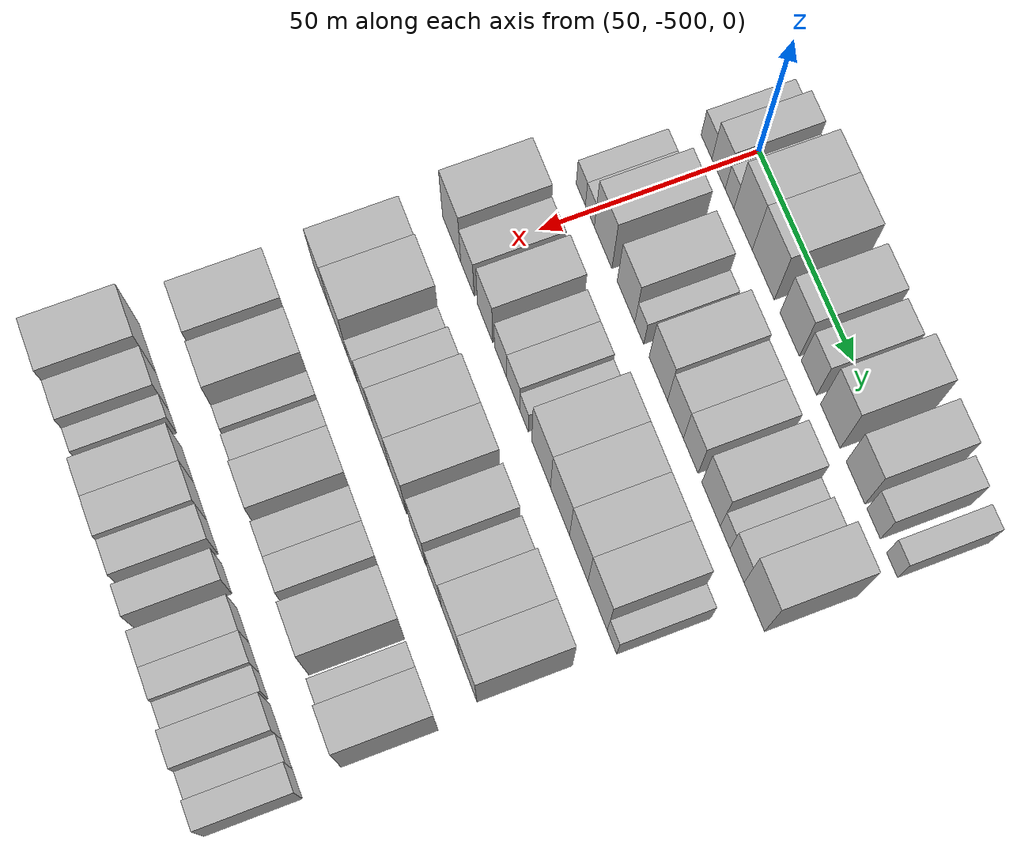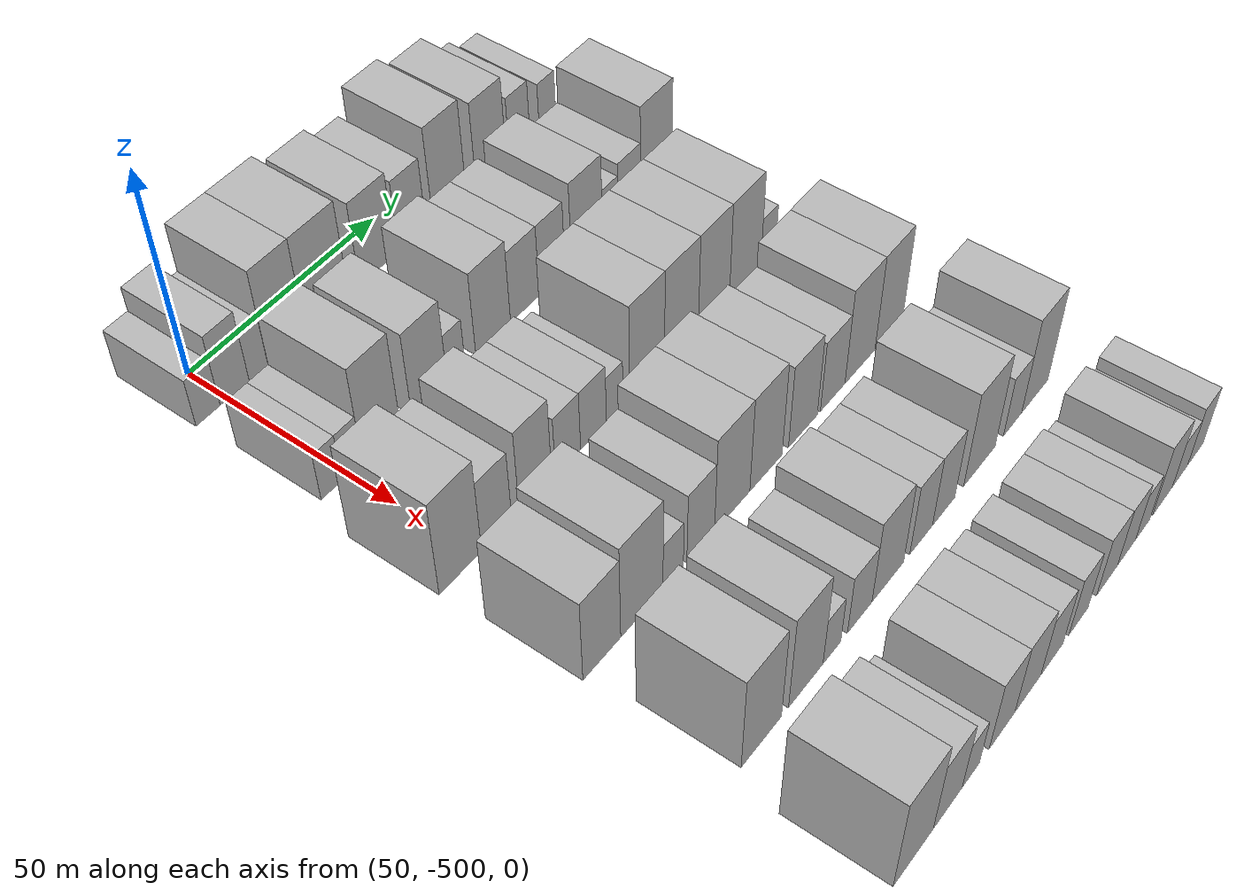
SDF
<sdf version="1.6">
 <world name="default">
  <model name="building_1">
   <static>1</static>
   <pose>50.0000 -505.0160 0 0.000000 0.000000 0.000000</pose>
   <link name="link">
    <pose>0 0 6.00 0 0 0</pose>
    <collision name="collision"><geometry><box><size>20.0000 5.9680 12.0000</size></box></geometry></collision>
    <visual name="visual">
     <cast_shadows>0</cast_shadows>
     <geometry><box><size>20.0000 5.9680 12.0000</size></box></geometry>
     <material>
      <script>
       <uri>model://HANNAS_wall/materials/scripts</uri>
       <uri>model://HANNAS_wall/materials/textures</uri>
       <name>vrc/HANNAS_wall</name>
      </script>
     </material>
    </visual>
   </link>
  </model>
  <model name="building_2">
   <static>1</static>
   <pose>50.0000 -498.3636 0 0.000000 0.000000 0.000000</pose>
   <link name="link">
    <pose>0 0 9.00 0 0 0</pose>
    <collision name="collision"><geometry><box><size>20.0000 7.3369 18.0000</size></box></geometry></collision>
    <visual name="visual">
     <cast_shadows>0</cast_shadows>
     <geometry><box><size>20.0000 7.3369 18.0000</size></box></geometry>
     <material>
      <script>
       <uri>model://HANNAS_wall/materials/scripts</uri>
       <uri>model://HANNAS_wall/materials/textures</uri>
       <name>vrc/HANNAS_wall</name>
      </script>
     </material>
    </visual>
   </link>
  </model>
  <model name="building_3">
   <static>1</static>
   <pose>50.0000 -492.2943 0 0.000000 0.000000 0.000000</pose>
   <link name="link">
    <pose>0 0 6.00 0 0 0</pose>
    <collision name="collision"><geometry><box><size>20.0000 4.8018 12.0000</size></box></geometry></collision>
    <visual name="visual">
     <cast_shadows>0</cast_shadows>
     <geometry><box><size>20.0000 4.8018 12.0000</size></box></geometry>
     <material>
      <script>
       <uri>model://HANNAS_wall/materials/scripts</uri>
       <uri>model://HANNAS_wall/materials/textures</uri>
       <name>vrc/HANNAS_wall</name>
      </script>
     </material>
    </visual>
   </link>
  </model>
  <model name="building_4">
   <static>1</static>
   <pose>50.0000 -484.9123 0 0.000000 0.000000 0.000000</pose>
   <link name="link">
    <pose>0 0 12.00 0 0 0</pose>
    <collision name="collision"><geometry><box><size>20.0000 9.9623 24.0000</size></box></geometry></collision>
    <visual name="visual">
     <cast_shadows>0</cast_shadows>
     <geometry><box><size>20.0000 9.9623 24.0000</size></box></geometry>
     <material>
      <script>
       <uri>model://HANNAS_wall/materials/scripts</uri>
       <uri>model://HANNAS_wall/materials/textures</uri>
       <name>vrc/HANNAS_wall</name>
      </script>
     </material>
    </visual>
   </link>
  </model>
  <model name="building_5">
   <static>1</static>
   <pose>50.0000 -474.0198 0 0.000000 0.000000 0.000000</pose>
   <link name="link">
    <pose>0 0 12.00 0 0 0</pose>
    <collision name="collision"><geometry><box><size>20.0000 11.8226 24.0000</size></box></geometry></collision>
    <visual name="visual">
     <cast_shadows>0</cast_shadows>
     <geometry><box><size>20.0000 11.8226 24.0000</size></box></geometry>
     <material>
      <script>
       <uri>model://HANNAS_wall/materials/scripts</uri>
       <uri>model://HANNAS_wall/materials/textures</uri>
       <name>vrc/HANNAS_wall</name>
      </script>
     </material>
    </visual>
   </link>
  </model>
  <model name="building_6">
   <static>1</static>
   <pose>50.0000 -460.0245 0 0.000000 0.000000 0.000000</pose>
   <link name="link">
    <pose>0 0 10.50 0 0 0</pose>
    <collision name="collision"><geometry><box><size>20.0000 10.1681 21.0000</size></box></geometry></collision>
    <visual name="visual">
     <cast_shadows>0</cast_shadows>
     <geometry><box><size>20.0000 10.1681 21.0000</size></box></geometry>
     <material>
      <script>
       <uri>model://HANNAS_wall/materials/scripts</uri>
       <uri>model://HANNAS_wall/materials/textures</uri>
       <name>vrc/HANNAS_wall</name>
      </script>
     </material>
    </visual>
   </link>
  </model>
  <model name="building_7">
   <static>1</static>
   <pose>50.0000 -449.9485 0 0.000000 0.000000 0.000000</pose>
   <link name="link">
    <pose>0 0 9.00 0 0 0</pose>
    <collision name="collision"><geometry><box><size>20.0000 7.9838 18.0000</size></box></geometry></collision>
    <visual name="visual">
     <cast_shadows>0</cast_shadows>
     <geometry><box><size>20.0000 7.9838 18.0000</size></box></geometry>
     <material>
      <script>
       <uri>model://HANNAS_wall/materials/scripts</uri>
       <uri>model://HANNAS_wall/materials/textures</uri>
       <name>vrc/HANNAS_wall</name>
      </script>
     </material>
    </visual>
   </link>
  </model>
  <model name="building_8">
   <static>1</static>
   <pose>50.0000 -438.9323 0 0.000000 0.000000 0.000000</pose>
   <link name="link">
    <pose>0 0 12.00 0 0 0</pose>
    <collision name="collision"><geometry><box><size>20.0000 10.0486 24.0000</size></box></geometry></collision>
    <visual name="visual">
     <cast_shadows>0</cast_shadows>
     <geometry><box><size>20.0000 10.0486 24.0000</size></box></geometry>
     <material>
      <script>
       <uri>model://HANNAS_wall/materials/scripts</uri>
       <uri>model://HANNAS_wall/materials/textures</uri>
       <name>vrc/HANNAS_wall</name>
      </script>
     </material>
    </visual>
   </link>
  </model>
  <model name="building_9">
   <static>1</static>
   <pose>50.0000 -426.1717 0 0.000000 0.000000 0.000000</pose>
   <link name="link">
    <pose>0 0 10.50 0 0 0</pose>
    <collision name="collision"><geometry><box><size>20.0000 9.4726 21.0000</size></box></geometry></collision>
    <visual name="visual">
     <cast_shadows>0</cast_shadows>
     <geometry><box><size>20.0000 9.4726 21.0000</size></box></geometry>
     <material>
      <script>
       <uri>model://HANNAS_wall/materials/scripts</uri>
       <uri>model://HANNAS_wall/materials/textures</uri>
       <name>vrc/HANNAS_wall</name>
      </script>
     </material>
    </visual>
   </link>
  </model>
  <model name="building_10">
   <static>1</static>
   <pose>50.0000 -417.1049 0 0.000000 0.000000 0.000000</pose>
   <link name="link">
    <pose>0 0 7.50 0 0 0</pose>
    <collision name="collision"><geometry><box><size>20.0000 6.6611 15.0000</size></box></geometry></collision>
    <visual name="visual">
     <cast_shadows>0</cast_shadows>
     <geometry><box><size>20.0000 6.6611 15.0000</size></box></geometry>
     <material>
      <script>
       <uri>model://HANNAS_wall/materials/scripts</uri>
       <uri>model://HANNAS_wall/materials/textures</uri>
       <name>vrc/HANNAS_wall</name>
      </script>
     </material>
    </visual>
   </link>
  </model>
  <model name="building_11">
   <static>1</static>
   <pose>50.0000 -408.0522 0 0.000000 0.000000 0.000000</pose>
   <link name="link">
    <pose>0 0 6.00 0 0 0</pose>
    <collision name="collision"><geometry><box><size>20.0000 5.4442 12.0000</size></box></geometry></collision>
    <visual name="visual">
     <cast_shadows>0</cast_shadows>
     <geometry><box><size>20.0000 5.4442 12.0000</size></box></geometry>
     <material>
      <script>
       <uri>model://HANNAS_wall/materials/scripts</uri>
       <uri>model://HANNAS_wall/materials/textures</uri>
       <name>vrc/HANNAS_wall</name>
      </script>
     </material>
    </visual>
   </link>
  </model>
  <model name="building_117">
   <static>1</static>
   <pose>79.0000 -504.3518 0 0.000000 0.000000 0.000000</pose>
   <link name="link">
    <pose>0 0 6.00 0 0 0</pose>
    <collision name="collision"><geometry><box><size>20.0000 5.2963 12.0000</size></box></geometry></collision>
    <visual name="visual">
     <cast_shadows>0</cast_shadows>
     <geometry><box><size>20.0000 5.2963 12.0000</size></box></geometry>
     <material>
      <script>
       <uri>model://HANNAS_wall/materials/scripts</uri>
       <uri>model://HANNAS_wall/materials/textures</uri>
       <name>vrc/HANNAS_wall</name>
      </script>
     </material>
    </visual>
   </link>
  </model>
  <model name="building_118">
   <static>1</static>
   <pose>79.0000 -499.1225 0 0.000000 0.000000 0.000000</pose>
   <link name="link">
    <pose>0 0 6.00 0 0 0</pose>
    <collision name="collision"><geometry><box><size>20.0000 5.1624 12.0000</size></box></geometry></collision>
    <visual name="visual">
     <cast_shadows>0</cast_shadows>
     <geometry><box><size>20.0000 5.1624 12.0000</size></box></geometry>
     <material>
      <script>
       <uri>model://HANNAS_wall/materials/scripts</uri>
       <uri>model://HANNAS_wall/materials/textures</uri>
       <name>vrc/HANNAS_wall</name>
      </script>
     </material>
    </visual>
   </link>
  </model>
  <model name="building_119">
   <static>1</static>
   <pose>79.0000 -491.5424 0 0.000000 0.000000 0.000000</pose>
   <link name="link">
    <pose>0 0 12.00 0 0 0</pose>
    <collision name="collision"><geometry><box><size>20.0000 9.9978 24.0000</size></box></geometry></collision>
    <visual name="visual">
     <cast_shadows>0</cast_shadows>
     <geometry><box><size>20.0000 9.9978 24.0000</size></box></geometry>
     <material>
      <script>
       <uri>model://HANNAS_wall/materials/scripts</uri>
       <uri>model://HANNAS_wall/materials/textures</uri>
       <name>vrc/HANNAS_wall</name>
      </script>
     </material>
    </visual>
   </link>
  </model>
  <model name="building_120">
   <static>1</static>
   <pose>79.0000 -478.6621 0 0.000000 0.000000 0.000000</pose>
   <link name="link">
    <pose>0 0 10.50 0 0 0</pose>
    <collision name="collision"><geometry><box><size>20.0000 9.7629 21.0000</size></box></geometry></collision>
    <visual name="visual">
     <cast_shadows>0</cast_shadows>
     <geometry><box><size>20.0000 9.7629 21.0000</size></box></geometry>
     <material>
      <script>
       <uri>model://HANNAS_wall/materials/scripts</uri>
       <uri>model://HANNAS_wall/materials/textures</uri>
       <name>vrc/HANNAS_wall</name>
      </script>
     </material>
    </visual>
   </link>
  </model>
  <model name="building_121">
   <static>1</static>
   <pose>79.0000 -471.2783 0 0.000000 0.000000 0.000000</pose>
   <link name="link">
    <pose>0 0 6.00 0 0 0</pose>
    <collision name="collision"><geometry><box><size>20.0000 5.0046 12.0000</size></box></geometry></collision>
    <visual name="visual">
     <cast_shadows>0</cast_shadows>
     <geometry><box><size>20.0000 5.0046 12.0000</size></box></geometry>
     <material>
      <script>
       <uri>model://HANNAS_wall/materials/scripts</uri>
       <uri>model://HANNAS_wall/materials/textures</uri>
       <name>vrc/HANNAS_wall</name>
      </script>
     </material>
    </visual>
   </link>
  </model>
  <model name="building_122">
   <static>1</static>
   <pose>79.0000 -460.7591 0 0.000000 0.000000 0.000000</pose>
   <link name="link">
    <pose>0 0 10.50 0 0 0</pose>
    <collision name="collision"><geometry><box><size>20.0000 10.0338 21.0000</size></box></geometry></collision>
    <visual name="visual">
     <cast_shadows>0</cast_shadows>
     <geometry><box><size>20.0000 10.0338 21.0000</size></box></geometry>
     <material>
      <script>
       <uri>model://HANNAS_wall/materials/scripts</uri>
       <uri>model://HANNAS_wall/materials/textures</uri>
       <name>vrc/HANNAS_wall</name>
      </script>
     </material>
    </visual>
   </link>
  </model>
  <model name="building_123">
   <static>1</static>
   <pose>79.0000 -451.4577 0 0.000000 0.000000 0.000000</pose>
   <link name="link">
    <pose>0 0 9.00 0 0 0</pose>
    <collision name="collision"><geometry><box><size>20.0000 8.5689 18.0000</size></box></geometry></collision>
    <visual name="visual">
     <cast_shadows>0</cast_shadows>
     <geometry><box><size>20.0000 8.5689 18.0000</size></box></geometry>
     <material>
      <script>
       <uri>model://HANNAS_wall/materials/scripts</uri>
       <uri>model://HANNAS_wall/materials/textures</uri>
       <name>vrc/HANNAS_wall</name>
      </script>
     </material>
    </visual>
   </link>
  </model>
  <model name="building_124">
   <static>1</static>
   <pose>79.0000 -443.2523 0 0.000000 0.000000 0.000000</pose>
   <link name="link">
    <pose>0 0 9.00 0 0 0</pose>
    <collision name="collision"><geometry><box><size>20.0000 7.8421 18.0000</size></box></geometry></collision>
    <visual name="visual">
     <cast_shadows>0</cast_shadows>
     <geometry><box><size>20.0000 7.8421 18.0000</size></box></geometry>
     <material>
      <script>
       <uri>model://HANNAS_wall/materials/scripts</uri>
       <uri>model://HANNAS_wall/materials/textures</uri>
       <name>vrc/HANNAS_wall</name>
      </script>
     </material>
    </visual>
   </link>
  </model>
  <model name="building_125">
   <static>1</static>
   <pose>79.0000 -432.4497 0 0.000000 0.000000 0.000000</pose>
   <link name="link">
    <pose>0 0 10.50 0 0 0</pose>
    <collision name="collision"><geometry><box><size>20.0000 9.7631 21.0000</size></box></geometry></collision>
    <visual name="visual">
     <cast_shadows>0</cast_shadows>
     <geometry><box><size>20.0000 9.7631 21.0000</size></box></geometry>
     <material>
      <script>
       <uri>model://HANNAS_wall/materials/scripts</uri>
       <uri>model://HANNAS_wall/materials/textures</uri>
       <name>vrc/HANNAS_wall</name>
      </script>
     </material>
    </visual>
   </link>
  </model>
  <model name="building_126">
   <static>1</static>
   <pose>79.0000 -425.0778 0 0.000000 0.000000 0.000000</pose>
   <link name="link">
    <pose>0 0 6.00 0 0 0</pose>
    <collision name="collision"><geometry><box><size>20.0000 4.9808 12.0000</size></box></geometry></collision>
    <visual name="visual">
     <cast_shadows>0</cast_shadows>
     <geometry><box><size>20.0000 4.9808 12.0000</size></box></geometry>
     <material>
      <script>
       <uri>model://HANNAS_wall/materials/scripts</uri>
       <uri>model://HANNAS_wall/materials/textures</uri>
       <name>vrc/HANNAS_wall</name>
      </script>
     </material>
    </visual>
   </link>
  </model>
  <model name="building_127">
   <static>1</static>
   <pose>79.0000 -418.9223 0 0.000000 0.000000 0.000000</pose>
   <link name="link">
    <pose>0 0 7.50 0 0 0</pose>
    <collision name="collision"><geometry><box><size>20.0000 7.3301 15.0000</size></box></geometry></collision>
    <visual name="visual">
     <cast_shadows>0</cast_shadows>
     <geometry><box><size>20.0000 7.3301 15.0000</size></box></geometry>
     <material>
      <script>
       <uri>model://HANNAS_wall/materials/scripts</uri>
       <uri>model://HANNAS_wall/materials/textures</uri>
       <name>vrc/HANNAS_wall</name>
      </script>
     </material>
    </visual>
   </link>
  </model>
  <model name="building_128">
   <static>1</static>
   <pose>79.0000 -410.0112 0 0.000000 0.000000 0.000000</pose>
   <link name="link">
    <pose>0 0 12.00 0 0 0</pose>
    <collision name="collision"><geometry><box><size>20.0000 10.4921 24.0000</size></box></geometry></collision>
    <visual name="visual">
     <cast_shadows>0</cast_shadows>
     <geometry><box><size>20.0000 10.4921 24.0000</size></box></geometry>
     <material>
      <script>
       <uri>model://HANNAS_wall/materials/scripts</uri>
       <uri>model://HANNAS_wall/materials/textures</uri>
       <name>vrc/HANNAS_wall</name>
      </script>
     </material>
    </visual>
   </link>
  </model>
  <model name="building_230">
   <static>1</static>
   <pose>108.0000 -504.5432 0 0.000000 0.000000 0.000000</pose>
   <link name="link">
    <pose>0 0 12.00 0 0 0</pose>
    <collision name="collision"><geometry><box><size>20.0000 10.9135 24.0000</size></box></geometry></collision>
    <visual name="visual">
     <cast_shadows>0</cast_shadows>
     <geometry><box><size>20.0000 10.9135 24.0000</size></box></geometry>
     <material>
      <script>
       <uri>model://HANNAS_wall/materials/scripts</uri>
       <uri>model://HANNAS_wall/materials/textures</uri>
       <name>vrc/HANNAS_wall</name>
      </script>
     </material>
    </visual>
   </link>
  </model>
  <model name="building_231">
   <static>1</static>
   <pose>108.0000 -495.0894 0 0.000000 0.000000 0.000000</pose>
   <link name="link">
    <pose>0 0 9.00 0 0 0</pose>
    <collision name="collision"><geometry><box><size>20.0000 7.9941 18.0000</size></box></geometry></collision>
    <visual name="visual">
     <cast_shadows>0</cast_shadows>
     <geometry><box><size>20.0000 7.9941 18.0000</size></box></geometry>
     <material>
      <script>
       <uri>model://HANNAS_wall/materials/scripts</uri>
       <uri>model://HANNAS_wall/materials/textures</uri>
       <name>vrc/HANNAS_wall</name>
      </script>
     </material>
    </visual>
   </link>
  </model>
  <model name="building_232">
   <static>1</static>
   <pose>108.0000 -484.6208 0 0.000000 0.000000 0.000000</pose>
   <link name="link">
    <pose>0 0 10.50 0 0 0</pose>
    <collision name="collision"><geometry><box><size>20.0000 8.9432 21.0000</size></box></geometry></collision>
    <visual name="visual">
     <cast_shadows>0</cast_shadows>
     <geometry><box><size>20.0000 8.9432 21.0000</size></box></geometry>
     <material>
      <script>
       <uri>model://HANNAS_wall/materials/scripts</uri>
       <uri>model://HANNAS_wall/materials/textures</uri>
       <name>vrc/HANNAS_wall</name>
      </script>
     </material>
    </visual>
   </link>
  </model>
  <model name="building_233">
   <static>1</static>
   <pose>108.0000 -475.5964 0 0.000000 0.000000 0.000000</pose>
   <link name="link">
    <pose>0 0 7.50 0 0 0</pose>
    <collision name="collision"><geometry><box><size>20.0000 7.1057 15.0000</size></box></geometry></collision>
    <visual name="visual">
     <cast_shadows>0</cast_shadows>
     <geometry><box><size>20.0000 7.1057 15.0000</size></box></geometry>
     <material>
      <script>
       <uri>model://HANNAS_wall/materials/scripts</uri>
       <uri>model://HANNAS_wall/materials/textures</uri>
       <name>vrc/HANNAS_wall</name>
      </script>
     </material>
    </visual>
   </link>
  </model>
  <model name="building_234">
   <static>1</static>
   <pose>108.0000 -468.3089 0 0.000000 0.000000 0.000000</pose>
   <link name="link">
    <pose>0 0 7.50 0 0 0</pose>
    <collision name="collision"><geometry><box><size>20.0000 7.4692 15.0000</size></box></geometry></collision>
    <visual name="visual">
     <cast_shadows>0</cast_shadows>
     <geometry><box><size>20.0000 7.4692 15.0000</size></box></geometry>
     <material>
      <script>
       <uri>model://HANNAS_wall/materials/scripts</uri>
       <uri>model://HANNAS_wall/materials/textures</uri>
       <name>vrc/HANNAS_wall</name>
      </script>
     </material>
    </visual>
   </link>
  </model>
  <model name="building_235">
   <static>1</static>
   <pose>108.0000 -462.1326 0 0.000000 0.000000 0.000000</pose>
   <link name="link">
    <pose>0 0 6.00 0 0 0</pose>
    <collision name="collision"><geometry><box><size>20.0000 4.8836 12.0000</size></box></geometry></collision>
    <visual name="visual">
     <cast_shadows>0</cast_shadows>
     <geometry><box><size>20.0000 4.8836 12.0000</size></box></geometry>
     <material>
      <script>
       <uri>model://HANNAS_wall/materials/scripts</uri>
       <uri>model://HANNAS_wall/materials/textures</uri>
       <name>vrc/HANNAS_wall</name>
      </script>
     </material>
    </visual>
   </link>
  </model>
  <model name="building_236">
   <static>1</static>
   <pose>108.0000 -452.4264 0 0.000000 0.000000 0.000000</pose>
   <link name="link">
    <pose>0 0 12.00 0 0 0</pose>
    <collision name="collision"><geometry><box><size>20.0000 10.5286 24.0000</size></box></geometry></collision>
    <visual name="visual">
     <cast_shadows>0</cast_shadows>
     <geometry><box><size>20.0000 10.5286 24.0000</size></box></geometry>
     <material>
      <script>
       <uri>model://HANNAS_wall/materials/scripts</uri>
       <uri>model://HANNAS_wall/materials/textures</uri>
       <name>vrc/HANNAS_wall</name>
      </script>
     </material>
    </visual>
   </link>
  </model>
  <model name="building_237">
   <static>1</static>
   <pose>108.0000 -441.8584 0 0.000000 0.000000 0.000000</pose>
   <link name="link">
    <pose>0 0 12.00 0 0 0</pose>
    <collision name="collision"><geometry><box><size>20.0000 10.6075 24.0000</size></box></geometry></collision>
    <visual name="visual">
     <cast_shadows>0</cast_shadows>
     <geometry><box><size>20.0000 10.6075 24.0000</size></box></geometry>
     <material>
      <script>
       <uri>model://HANNAS_wall/materials/scripts</uri>
       <uri>model://HANNAS_wall/materials/textures</uri>
       <name>vrc/HANNAS_wall</name>
      </script>
     </material>
    </visual>
   </link>
  </model>
  <model name="building_238">
   <static>1</static>
   <pose>108.0000 -431.5126 0 0.000000 0.000000 0.000000</pose>
   <link name="link">
    <pose>0 0 12.00 0 0 0</pose>
    <collision name="collision"><geometry><box><size>20.0000 10.0840 24.0000</size></box></geometry></collision>
    <visual name="visual">
     <cast_shadows>0</cast_shadows>
     <geometry><box><size>20.0000 10.0840 24.0000</size></box></geometry>
     <material>
      <script>
       <uri>model://HANNAS_wall/materials/scripts</uri>
       <uri>model://HANNAS_wall/materials/textures</uri>
       <name>vrc/HANNAS_wall</name>
      </script>
     </material>
    </visual>
   </link>
  </model>
  <model name="building_239">
   <static>1</static>
   <pose>108.0000 -421.2547 0 0.000000 0.000000 0.000000</pose>
   <link name="link">
    <pose>0 0 12.00 0 0 0</pose>
    <collision name="collision"><geometry><box><size>20.0000 10.4318 24.0000</size></box></geometry></collision>
    <visual name="visual">
     <cast_shadows>0</cast_shadows>
     <geometry><box><size>20.0000 10.4318 24.0000</size></box></geometry>
     <material>
      <script>
       <uri>model://HANNAS_wall/materials/scripts</uri>
       <uri>model://HANNAS_wall/materials/textures</uri>
       <name>vrc/HANNAS_wall</name>
      </script>
     </material>
    </visual>
   </link>
  </model>
  <model name="building_240">
   <static>1</static>
   <pose>108.0000 -413.5154 0 0.000000 0.000000 0.000000</pose>
   <link name="link">
    <pose>0 0 6.00 0 0 0</pose>
    <collision name="collision"><geometry><box><size>20.0000 5.0469 12.0000</size></box></geometry></collision>
    <visual name="visual">
     <cast_shadows>0</cast_shadows>
     <geometry><box><size>20.0000 5.0469 12.0000</size></box></geometry>
     <material>
      <script>
       <uri>model://HANNAS_wall/materials/scripts</uri>
       <uri>model://HANNAS_wall/materials/textures</uri>
       <name>vrc/HANNAS_wall</name>
      </script>
     </material>
    </visual>
   </link>
  </model>
  <model name="building_345">
   <static>1</static>
   <pose>137.0000 -504.0115 0 0.000000 0.000000 0.000000</pose>
   <link name="link">
    <pose>0 0 10.50 0 0 0</pose>
    <collision name="collision"><geometry><box><size>20.0000 9.9769 21.0000</size></box></geometry></collision>
    <visual name="visual">
     <cast_shadows>0</cast_shadows>
     <geometry><box><size>20.0000 9.9769 21.0000</size></box></geometry>
     <material>
      <script>
       <uri>model://HANNAS_wall/materials/scripts</uri>
       <uri>model://HANNAS_wall/materials/textures</uri>
       <name>vrc/HANNAS_wall</name>
      </script>
     </material>
    </visual>
   </link>
  </model>
  <model name="building_346">
   <static>1</static>
   <pose>137.0000 -493.2510 0 0.000000 0.000000 0.000000</pose>
   <link name="link">
    <pose>0 0 12.00 0 0 0</pose>
    <collision name="collision"><geometry><box><size>20.0000 11.5442 24.0000</size></box></geometry></collision>
    <visual name="visual">
     <cast_shadows>0</cast_shadows>
     <geometry><box><size>20.0000 11.5442 24.0000</size></box></geometry>
     <material>
      <script>
       <uri>model://HANNAS_wall/materials/scripts</uri>
       <uri>model://HANNAS_wall/materials/textures</uri>
       <name>vrc/HANNAS_wall</name>
      </script>
     </material>
    </visual>
   </link>
  </model>
  <model name="building_347">
   <static>1</static>
   <pose>137.0000 -484.6109 0 0.000000 0.000000 0.000000</pose>
   <link name="link">
    <pose>0 0 6.00 0 0 0</pose>
    <collision name="collision"><geometry><box><size>20.0000 5.7360 12.0000</size></box></geometry></collision>
    <visual name="visual">
     <cast_shadows>0</cast_shadows>
     <geometry><box><size>20.0000 5.7360 12.0000</size></box></geometry>
     <material>
      <script>
       <uri>model://HANNAS_wall/materials/scripts</uri>
       <uri>model://HANNAS_wall/materials/textures</uri>
       <name>vrc/HANNAS_wall</name>
      </script>
     </material>
    </visual>
   </link>
  </model>
  <model name="building_348">
   <static>1</static>
   <pose>137.0000 -476.7423 0 0.000000 0.000000 0.000000</pose>
   <link name="link">
    <pose>0 0 9.00 0 0 0</pose>
    <collision name="collision"><geometry><box><size>20.0000 8.0011 18.0000</size></box></geometry></collision>
    <visual name="visual">
     <cast_shadows>0</cast_shadows>
     <geometry><box><size>20.0000 8.0011 18.0000</size></box></geometry>
     <material>
      <script>
       <uri>model://HANNAS_wall/materials/scripts</uri>
       <uri>model://HANNAS_wall/materials/textures</uri>
       <name>vrc/HANNAS_wall</name>
      </script>
     </material>
    </visual>
   </link>
  </model>
  <model name="building_349">
   <static>1</static>
   <pose>137.0000 -467.4616 0 0.000000 0.000000 0.000000</pose>
   <link name="link">
    <pose>0 0 12.00 0 0 0</pose>
    <collision name="collision"><geometry><box><size>20.0000 10.5604 24.0000</size></box></geometry></collision>
    <visual name="visual">
     <cast_shadows>0</cast_shadows>
     <geometry><box><size>20.0000 10.5604 24.0000</size></box></geometry>
     <material>
      <script>
       <uri>model://HANNAS_wall/materials/scripts</uri>
       <uri>model://HANNAS_wall/materials/textures</uri>
       <name>vrc/HANNAS_wall</name>
      </script>
     </material>
    </visual>
   </link>
  </model>
  <model name="building_350">
   <static>1</static>
   <pose>137.0000 -457.1980 0 0.000000 0.000000 0.000000</pose>
   <link name="link">
    <pose>0 0 12.00 0 0 0</pose>
    <collision name="collision"><geometry><box><size>20.0000 9.9667 24.0000</size></box></geometry></collision>
    <visual name="visual">
     <cast_shadows>0</cast_shadows>
     <geometry><box><size>20.0000 9.9667 24.0000</size></box></geometry>
     <material>
      <script>
       <uri>model://HANNAS_wall/materials/scripts</uri>
       <uri>model://HANNAS_wall/materials/textures</uri>
       <name>vrc/HANNAS_wall</name>
      </script>
     </material>
    </visual>
   </link>
  </model>
  <model name="building_351">
   <static>1</static>
   <pose>137.0000 -445.5944 0 0.000000 0.000000 0.000000</pose>
   <link name="link">
    <pose>0 0 10.50 0 0 0</pose>
    <collision name="collision"><geometry><box><size>20.0000 9.2406 21.0000</size></box></geometry></collision>
    <visual name="visual">
     <cast_shadows>0</cast_shadows>
     <geometry><box><size>20.0000 9.2406 21.0000</size></box></geometry>
     <material>
      <script>
       <uri>model://HANNAS_wall/materials/scripts</uri>
       <uri>model://HANNAS_wall/materials/textures</uri>
       <name>vrc/HANNAS_wall</name>
      </script>
     </material>
    </visual>
   </link>
  </model>
  <model name="building_352">
   <static>1</static>
   <pose>137.0000 -435.9169 0 0.000000 0.000000 0.000000</pose>
   <link name="link">
    <pose>0 0 9.00 0 0 0</pose>
    <collision name="collision"><geometry><box><size>20.0000 8.1144 18.0000</size></box></geometry></collision>
    <visual name="visual">
     <cast_shadows>0</cast_shadows>
     <geometry><box><size>20.0000 8.1144 18.0000</size></box></geometry>
     <material>
      <script>
       <uri>model://HANNAS_wall/materials/scripts</uri>
       <uri>model://HANNAS_wall/materials/textures</uri>
       <name>vrc/HANNAS_wall</name>
      </script>
     </material>
    </visual>
   </link>
  </model>
  <model name="building_353">
   <static>1</static>
   <pose>137.0000 -426.7456 0 0.000000 0.000000 0.000000</pose>
   <link name="link">
    <pose>0 0 12.00 0 0 0</pose>
    <collision name="collision"><geometry><box><size>20.0000 10.2281 24.0000</size></box></geometry></collision>
    <visual name="visual">
     <cast_shadows>0</cast_shadows>
     <geometry><box><size>20.0000 10.2281 24.0000</size></box></geometry>
     <material>
      <script>
       <uri>model://HANNAS_wall/materials/scripts</uri>
       <uri>model://HANNAS_wall/materials/textures</uri>
       <name>vrc/HANNAS_wall</name>
      </script>
     </material>
    </visual>
   </link>
  </model>
  <model name="building_354">
   <static>1</static>
   <pose>137.0000 -416.7948 0 0.000000 0.000000 0.000000</pose>
   <link name="link">
    <pose>0 0 12.00 0 0 0</pose>
    <collision name="collision"><geometry><box><size>20.0000 9.6735 24.0000</size></box></geometry></collision>
    <visual name="visual">
     <cast_shadows>0</cast_shadows>
     <geometry><box><size>20.0000 9.6735 24.0000</size></box></geometry>
     <material>
      <script>
       <uri>model://HANNAS_wall/materials/scripts</uri>
       <uri>model://HANNAS_wall/materials/textures</uri>
       <name>vrc/HANNAS_wall</name>
      </script>
     </material>
    </visual>
   </link>
  </model>
  <model name="building_452">
   <static>1</static>
   <pose>166.0000 -501.4610 0 0.000000 0.000000 0.000000</pose>
   <link name="link">
    <pose>0 0 12.00 0 0 0</pose>
    <collision name="collision"><geometry><box><size>20.0000 11.0780 24.0000</size></box></geometry></collision>
    <visual name="visual">
     <cast_shadows>0</cast_shadows>
     <geometry><box><size>20.0000 11.0780 24.0000</size></box></geometry>
     <material>
      <script>
       <uri>model://HANNAS_wall/materials/scripts</uri>
       <uri>model://HANNAS_wall/materials/textures</uri>
       <name>vrc/HANNAS_wall</name>
      </script>
     </material>
    </visual>
   </link>
  </model>
  <model name="building_453">
   <static>1</static>
   <pose>166.0000 -488.9550 0 0.000000 0.000000 0.000000</pose>
   <link name="link">
    <pose>0 0 12.00 0 0 0</pose>
    <collision name="collision"><geometry><box><size>20.0000 9.9340 24.0000</size></box></geometry></collision>
    <visual name="visual">
     <cast_shadows>0</cast_shadows>
     <geometry><box><size>20.0000 9.9340 24.0000</size></box></geometry>
     <material>
      <script>
       <uri>model://HANNAS_wall/materials/scripts</uri>
       <uri>model://HANNAS_wall/materials/textures</uri>
       <name>vrc/HANNAS_wall</name>
      </script>
     </material>
    </visual>
   </link>
  </model>
  <model name="building_454">
   <static>1</static>
   <pose>166.0000 -481.3633 0 0.000000 0.000000 0.000000</pose>
   <link name="link">
    <pose>0 0 6.00 0 0 0</pose>
    <collision name="collision"><geometry><box><size>20.0000 5.2494 12.0000</size></box></geometry></collision>
    <visual name="visual">
     <cast_shadows>0</cast_shadows>
     <geometry><box><size>20.0000 5.2494 12.0000</size></box></geometry>
     <material>
      <script>
       <uri>model://HANNAS_wall/materials/scripts</uri>
       <uri>model://HANNAS_wall/materials/textures</uri>
       <name>vrc/HANNAS_wall</name>
      </script>
     </material>
    </visual>
   </link>
  </model>
  <model name="building_455">
   <static>1</static>
   <pose>166.0000 -473.0006 0 0.000000 0.000000 0.000000</pose>
   <link name="link">
    <pose>0 0 7.50 0 0 0</pose>
    <collision name="collision"><geometry><box><size>20.0000 7.4759 15.0000</size></box></geometry></collision>
    <visual name="visual">
     <cast_shadows>0</cast_shadows>
     <geometry><box><size>20.0000 7.4759 15.0000</size></box></geometry>
     <material>
      <script>
       <uri>model://HANNAS_wall/materials/scripts</uri>
       <uri>model://HANNAS_wall/materials/textures</uri>
       <name>vrc/HANNAS_wall</name>
      </script>
     </material>
    </visual>
   </link>
  </model>
  <model name="building_456">
   <static>1</static>
   <pose>166.0000 -464.3026 0 0.000000 0.000000 0.000000</pose>
   <link name="link">
    <pose>0 0 10.50 0 0 0</pose>
    <collision name="collision"><geometry><box><size>20.0000 9.9203 21.0000</size></box></geometry></collision>
    <visual name="visual">
     <cast_shadows>0</cast_shadows>
     <geometry><box><size>20.0000 9.9203 21.0000</size></box></geometry>
     <material>
      <script>
       <uri>model://HANNAS_wall/materials/scripts</uri>
       <uri>model://HANNAS_wall/materials/textures</uri>
       <name>vrc/HANNAS_wall</name>
      </script>
     </material>
    </visual>
   </link>
  </model>
  <model name="building_457">
   <static>1</static>
   <pose>166.0000 -453.6664 0 0.000000 0.000000 0.000000</pose>
   <link name="link">
    <pose>0 0 9.00 0 0 0</pose>
    <collision name="collision"><geometry><box><size>20.0000 7.3521 18.0000</size></box></geometry></collision>
    <visual name="visual">
     <cast_shadows>0</cast_shadows>
     <geometry><box><size>20.0000 7.3521 18.0000</size></box></geometry>
     <material>
      <script>
       <uri>model://HANNAS_wall/materials/scripts</uri>
       <uri>model://HANNAS_wall/materials/textures</uri>
       <name>vrc/HANNAS_wall</name>
      </script>
     </material>
    </visual>
   </link>
  </model>
  <model name="building_458">
   <static>1</static>
   <pose>166.0000 -446.2696 0 0.000000 0.000000 0.000000</pose>
   <link name="link">
    <pose>0 0 9.00 0 0 0</pose>
    <collision name="collision"><geometry><box><size>20.0000 7.4415 18.0000</size></box></geometry></collision>
    <visual name="visual">
     <cast_shadows>0</cast_shadows>
     <geometry><box><size>20.0000 7.4415 18.0000</size></box></geometry>
     <material>
      <script>
       <uri>model://HANNAS_wall/materials/scripts</uri>
       <uri>model://HANNAS_wall/materials/textures</uri>
       <name>vrc/HANNAS_wall</name>
      </script>
     </material>
    </visual>
   </link>
  </model>
  <model name="building_459">
   <static>1</static>
   <pose>166.0000 -434.0864 0 0.000000 0.000000 0.000000</pose>
   <link name="link">
    <pose>0 0 12.00 0 0 0</pose>
    <collision name="collision"><geometry><box><size>20.0000 10.9249 24.0000</size></box></geometry></collision>
    <visual name="visual">
     <cast_shadows>0</cast_shadows>
     <geometry><box><size>20.0000 10.9249 24.0000</size></box></geometry>
     <material>
      <script>
       <uri>model://HANNAS_wall/materials/scripts</uri>
       <uri>model://HANNAS_wall/materials/textures</uri>
       <name>vrc/HANNAS_wall</name>
      </script>
     </material>
    </visual>
   </link>
  </model>
  <model name="building_460">
   <static>1</static>
   <pose>166.0000 -422.3600 0 0.000000 0.000000 0.000000</pose>
   <link name="link">
    <pose>0 0 7.50 0 0 0</pose>
    <collision name="collision"><geometry><box><size>20.0000 6.5278 15.0000</size></box></geometry></collision>
    <visual name="visual">
     <cast_shadows>0</cast_shadows>
     <geometry><box><size>20.0000 6.5278 15.0000</size></box></geometry>
     <material>
      <script>
       <uri>model://HANNAS_wall/materials/scripts</uri>
       <uri>model://HANNAS_wall/materials/textures</uri>
       <name>vrc/HANNAS_wall</name>
      </script>
     </material>
    </visual>
   </link>
  </model>
  <model name="building_461">
   <static>1</static>
   <pose>166.0000 -414.2925 0 0.000000 0.000000 0.000000</pose>
   <link name="link">
    <pose>0 0 12.00 0 0 0</pose>
    <collision name="collision"><geometry><box><size>20.0000 9.6072 24.0000</size></box></geometry></collision>
    <visual name="visual">
     <cast_shadows>0</cast_shadows>
     <geometry><box><size>20.0000 9.6072 24.0000</size></box></geometry>
     <material>
      <script>
       <uri>model://HANNAS_wall/materials/scripts</uri>
       <uri>model://HANNAS_wall/materials/textures</uri>
       <name>vrc/HANNAS_wall</name>
      </script>
     </material>
    </visual>
   </link>
  </model>
  <model name="building_563">
   <static>1</static>
   <pose>195.0000 -504.2820 0 0.000000 0.000000 0.000000</pose>
   <link name="link">
    <pose>0 0 12.00 0 0 0</pose>
    <collision name="collision"><geometry><box><size>20.0000 11.4360 24.0000</size></box></geometry></collision>
    <visual name="visual">
     <cast_shadows>0</cast_shadows>
     <geometry><box><size>20.0000 11.4360 24.0000</size></box></geometry>
     <material>
      <script>
       <uri>model://HANNAS_wall/materials/scripts</uri>
       <uri>model://HANNAS_wall/materials/textures</uri>
       <name>vrc/HANNAS_wall</name>
      </script>
     </material>
    </visual>
   </link>
  </model>
  <model name="building_564">
   <static>1</static>
   <pose>195.0000 -494.2819 0 0.000000 0.000000 0.000000</pose>
   <link name="link">
    <pose>0 0 9.00 0 0 0</pose>
    <collision name="collision"><geometry><box><size>20.0000 8.5642 18.0000</size></box></geometry></collision>
    <visual name="visual">
     <cast_shadows>0</cast_shadows>
     <geometry><box><size>20.0000 8.5642 18.0000</size></box></geometry>
     <material>
      <script>
       <uri>model://HANNAS_wall/materials/scripts</uri>
       <uri>model://HANNAS_wall/materials/textures</uri>
       <name>vrc/HANNAS_wall</name>
      </script>
     </material>
    </visual>
   </link>
  </model>
  <model name="building_565">
   <static>1</static>
   <pose>195.0000 -487.3970 0 0.000000 0.000000 0.000000</pose>
   <link name="link">
    <pose>0 0 6.00 0 0 0</pose>
    <collision name="collision"><geometry><box><size>20.0000 5.2057 12.0000</size></box></geometry></collision>
    <visual name="visual">
     <cast_shadows>0</cast_shadows>
     <geometry><box><size>20.0000 5.2057 12.0000</size></box></geometry>
     <material>
      <script>
       <uri>model://HANNAS_wall/materials/scripts</uri>
       <uri>model://HANNAS_wall/materials/textures</uri>
       <name>vrc/HANNAS_wall</name>
      </script>
     </material>
    </visual>
   </link>
  </model>
  <model name="building_566">
   <static>1</static>
   <pose>195.0000 -477.7528 0 0.000000 0.000000 0.000000</pose>
   <link name="link">
    <pose>0 0 9.00 0 0 0</pose>
    <collision name="collision"><geometry><box><size>20.0000 8.0827 18.0000</size></box></geometry></collision>
    <visual name="visual">
     <cast_shadows>0</cast_shadows>
     <geometry><box><size>20.0000 8.0827 18.0000</size></box></geometry>
     <material>
      <script>
       <uri>model://HANNAS_wall/materials/scripts</uri>
       <uri>model://HANNAS_wall/materials/textures</uri>
       <name>vrc/HANNAS_wall</name>
      </script>
     </material>
    </visual>
   </link>
  </model>
  <model name="building_567">
   <static>1</static>
   <pose>195.0000 -469.5093 0 0.000000 0.000000 0.000000</pose>
   <link name="link">
    <pose>0 0 9.00 0 0 0</pose>
    <collision name="collision"><geometry><box><size>20.0000 8.4044 18.0000</size></box></geometry></collision>
    <visual name="visual">
     <cast_shadows>0</cast_shadows>
     <geometry><box><size>20.0000 8.4044 18.0000</size></box></geometry>
     <material>
      <script>
       <uri>model://HANNAS_wall/materials/scripts</uri>
       <uri>model://HANNAS_wall/materials/textures</uri>
       <name>vrc/HANNAS_wall</name>
      </script>
     </material>
    </visual>
   </link>
  </model>
  <model name="building_568">
   <static>1</static>
   <pose>195.0000 -461.6148 0 0.000000 0.000000 0.000000</pose>
   <link name="link">
    <pose>0 0 7.50 0 0 0</pose>
    <collision name="collision"><geometry><box><size>20.0000 7.3845 15.0000</size></box></geometry></collision>
    <visual name="visual">
     <cast_shadows>0</cast_shadows>
     <geometry><box><size>20.0000 7.3845 15.0000</size></box></geometry>
     <material>
      <script>
       <uri>model://HANNAS_wall/materials/scripts</uri>
       <uri>model://HANNAS_wall/materials/textures</uri>
       <name>vrc/HANNAS_wall</name>
      </script>
     </material>
    </visual>
   </link>
  </model>
  <model name="building_569">
   <static>1</static>
   <pose>195.0000 -452.6329 0 0.000000 0.000000 0.000000</pose>
   <link name="link">
    <pose>0 0 7.50 0 0 0</pose>
    <collision name="collision"><geometry><box><size>20.0000 6.5794 15.0000</size></box></geometry></collision>
    <visual name="visual">
     <cast_shadows>0</cast_shadows>
     <geometry><box><size>20.0000 6.5794 15.0000</size></box></geometry>
     <material>
      <script>
       <uri>model://HANNAS_wall/materials/scripts</uri>
       <uri>model://HANNAS_wall/materials/textures</uri>
       <name>vrc/HANNAS_wall</name>
      </script>
     </material>
    </visual>
   </link>
  </model>
  <model name="building_570">
   <static>1</static>
   <pose>195.0000 -442.6426 0 0.000000 0.000000 0.000000</pose>
   <link name="link">
    <pose>0 0 7.50 0 0 0</pose>
    <collision name="collision"><geometry><box><size>20.0000 7.4013 15.0000</size></box></geometry></collision>
    <visual name="visual">
     <cast_shadows>0</cast_shadows>
     <geometry><box><size>20.0000 7.4013 15.0000</size></box></geometry>
     <material>
      <script>
       <uri>model://HANNAS_wall/materials/scripts</uri>
       <uri>model://HANNAS_wall/materials/textures</uri>
       <name>vrc/HANNAS_wall</name>
      </script>
     </material>
    </visual>
   </link>
  </model>
  <model name="building_571">
   <static>1</static>
   <pose>195.0000 -435.6686 0 0.000000 0.000000 0.000000</pose>
   <link name="link">
    <pose>0 0 7.50 0 0 0</pose>
    <collision name="collision"><geometry><box><size>20.0000 6.5467 15.0000</size></box></geometry></collision>
    <visual name="visual">
     <cast_shadows>0</cast_shadows>
     <geometry><box><size>20.0000 6.5467 15.0000</size></box></geometry>
     <material>
      <script>
       <uri>model://HANNAS_wall/materials/scripts</uri>
       <uri>model://HANNAS_wall/materials/textures</uri>
       <name>vrc/HANNAS_wall</name>
      </script>
     </material>
    </visual>
   </link>
  </model>
  <model name="building_572">
   <static>1</static>
   <pose>195.0000 -429.7006 0 0.000000 0.000000 0.000000</pose>
   <link name="link">
    <pose>0 0 6.00 0 0 0</pose>
    <collision name="collision"><geometry><box><size>20.0000 5.3891 12.0000</size></box></geometry></collision>
    <visual name="visual">
     <cast_shadows>0</cast_shadows>
     <geometry><box><size>20.0000 5.3891 12.0000</size></box></geometry>
     <material>
      <script>
       <uri>model://HANNAS_wall/materials/scripts</uri>
       <uri>model://HANNAS_wall/materials/textures</uri>
       <name>vrc/HANNAS_wall</name>
      </script>
     </material>
    </visual>
   </link>
  </model>
  <model name="building_573">
   <static>1</static>
   <pose>195.0000 -422.2367 0 0.000000 0.000000 0.000000</pose>
   <link name="link">
    <pose>0 0 9.00 0 0 0</pose>
    <collision name="collision"><geometry><box><size>20.0000 7.5388 18.0000</size></box></geometry></collision>
    <visual name="visual">
     <cast_shadows>0</cast_shadows>
     <geometry><box><size>20.0000 7.5388 18.0000</size></box></geometry>
     <material>
      <script>
       <uri>model://HANNAS_wall/materials/scripts</uri>
       <uri>model://HANNAS_wall/materials/textures</uri>
       <name>vrc/HANNAS_wall</name>
      </script>
     </material>
    </visual>
   </link>
  </model>
  <model name="building_574">
   <static>1</static>
   <pose>195.0000 -415.5166 0 0.000000 0.000000 0.000000</pose>
   <link name="link">
    <pose>0 0 6.00 0 0 0</pose>
    <collision name="collision"><geometry><box><size>20.0000 5.9014 12.0000</size></box></geometry></collision>
    <visual name="visual">
     <cast_shadows>0</cast_shadows>
     <geometry><box><size>20.0000 5.9014 12.0000</size></box></geometry>
     <material>
      <script>
       <uri>model://HANNAS_wall/materials/scripts</uri>
       <uri>model://HANNAS_wall/materials/textures</uri>
       <name>vrc/HANNAS_wall</name>
      </script>
     </material>
    </visual>
   </link>
  </model>
  <model name="building_575">
   <static>1</static>
   <pose>195.0000 -409.5212 0 0.000000 0.000000 0.000000</pose>
   <link name="link">
    <pose>0 0 7.50 0 0 0</pose>
    <collision name="collision"><geometry><box><size>20.0000 6.0894 15.0000</size></box></geometry></collision>
    <visual name="visual">
     <cast_shadows>0</cast_shadows>
     <geometry><box><size>20.0000 6.0894 15.0000</size></box></geometry>
     <material>
      <script>
       <uri>model://HANNAS_wall/materials/scripts</uri>
       <uri>model://HANNAS_wall/materials/textures</uri>
       <name>vrc/HANNAS_wall</name>
      </script>
     </material>
    </visual>
   </link>
  </model>
 </world>
</sdf>
